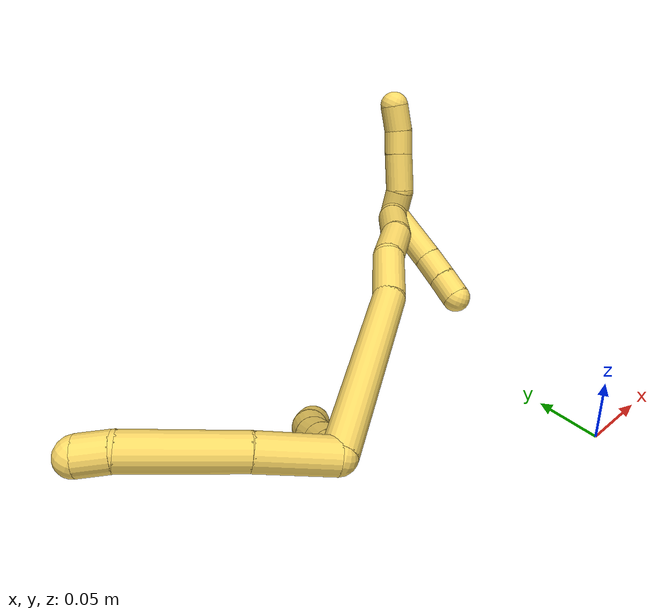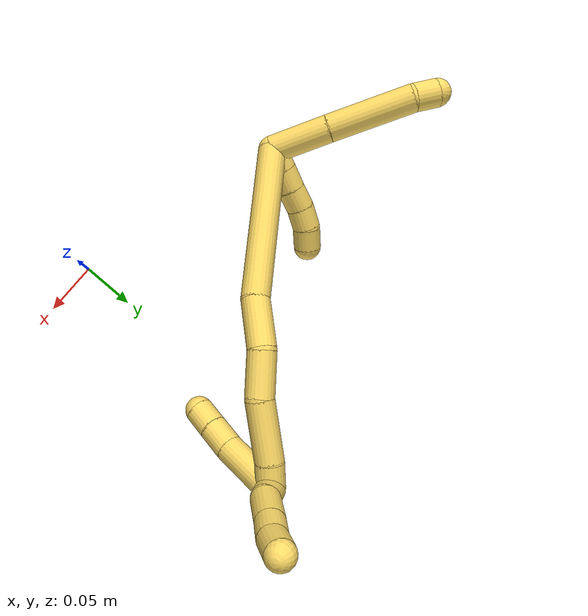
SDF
<sdf version="1.7">
 <world name="default">
  <model name="5">
   <static>0</static>
   <link name="5">
    <collision name="collision-cylinder-e_1_2_8">
     <pose>-0.020181 0.016106 -0.005614 -1.90618 -0.869127 1.15742</pose>
     <geometry><cylinder><radius>0.0125</radius><length>0.052847</length></cylinder></geometry>
     <surface>
      <friction><ode><mu>1.16</mu><mu2>1.16</mu2><slip1>0</slip1><slip2>0</slip2></ode></friction>
      <contact><ode><kp>1e+06</kp><kd>1</kd><max_vel>0</max_vel><min_depth>0.001</min_depth></ode></contact>
     </surface>
    </collision>
    <visual name="visual-cylinder-e_1_2_8">
     <pose>-0.020181 0.016106 -0.005614 -1.90618 -0.869127 1.15742</pose>
     <geometry><cylinder><radius>0.0125</radius><length>0.052847</length></cylinder></geometry>
     <material><ambient>1 0.858824 0.4 1</ambient></material>
    </visual>
    <collision name="collision-cylinder-e_2_8_9">
     <pose>-0.06904 0.055379 -0.021342 -1.98246 -0.848299 1.2078</pose>
     <geometry><cylinder><radius>0.0125</radius><length>0.076456</length></cylinder></geometry>
     <surface>
      <friction><ode><mu>1.16</mu><mu2>1.16</mu2><slip1>0</slip1><slip2>0</slip2></ode></friction>
      <contact><ode><kp>1e+06</kp><kd>1</kd><max_vel>0</max_vel><min_depth>0.001</min_depth></ode></contact>
     </surface>
    </collision>
    <visual name="visual-cylinder-e_2_8_9">
     <pose>-0.06904 0.055379 -0.021342 -1.98246 -0.848299 1.2078</pose>
     <geometry><cylinder><radius>0.0125</radius><length>0.076456</length></cylinder></geometry>
     <material><ambient>1 0.858824 0.4 1</ambient></material>
    </visual>
    <collision name="collision-cylinder-e_3_9_6">
     <pose>-0.104113 0.085085 -0.036297 -2.20789 -0.666272 1.2033</pose>
     <geometry><cylinder><radius>0.0125</radius><length>0.020697</length></cylinder></geometry>
     <surface>
      <friction><ode><mu>1.16</mu><mu2>1.16</mu2><slip1>0</slip1><slip2>0</slip2></ode></friction>
      <contact><ode><kp>1e+06</kp><kd>1</kd><max_vel>0</max_vel><min_depth>0.001</min_depth></ode></contact>
     </surface>
    </collision>
    <visual name="visual-cylinder-e_3_9_6">
     <pose>-0.104113 0.085085 -0.036297 -2.20789 -0.666272 1.2033</pose>
     <geometry><cylinder><radius>0.0125</radius><length>0.020697</length></cylinder></geometry>
     <material><ambient>1 0.858824 0.4 1</ambient></material>
    </visual>
    <collision name="collision-cylinder-e_1_2_10">
     <pose>0.005709 0.007364 -0.003629 -2.02867 0.607634 -0.933736</pose>
     <geometry><cylinder><radius>0.0125</radius><length>0.02</length></cylinder></geometry>
     <surface>
      <friction><ode><mu>1.16</mu><mu2>1.16</mu2><slip1>0</slip1><slip2>0</slip2></ode></friction>
      <contact><ode><kp>1e+06</kp><kd>1</kd><max_vel>0</max_vel><min_depth>0.001</min_depth></ode></contact>
     </surface>
    </collision>
    <visual name="visual-cylinder-e_1_2_10">
     <pose>0.005709 0.007364 -0.003629 -2.02867 0.607634 -0.933736</pose>
     <geometry><cylinder><radius>0.0125</radius><length>0.02</length></cylinder></geometry>
     <material><ambient>1 0.858824 0.4 1</ambient></material>
    </visual>
    <collision name="collision-cylinder-e_2_10_11">
     <pose>0.017433 0.021955 -0.010666 -2.01146 0.645268 -0.97047</pose>
     <geometry><cylinder><radius>0.0125</radius><length>0.02</length></cylinder></geometry>
     <surface>
      <friction><ode><mu>1.16</mu><mu2>1.16</mu2><slip1>0</slip1><slip2>0</slip2></ode></friction>
      <contact><ode><kp>1e+06</kp><kd>1</kd><max_vel>0</max_vel><min_depth>0.001</min_depth></ode></contact>
     </surface>
    </collision>
    <visual name="visual-cylinder-e_2_10_11">
     <pose>0.017433 0.021955 -0.010666 -2.01146 0.645268 -0.97047</pose>
     <geometry><cylinder><radius>0.0125</radius><length>0.02</length></cylinder></geometry>
     <material><ambient>1 0.858824 0.4 1</ambient></material>
    </visual>
    <collision name="collision-cylinder-e_3_11_12">
     <pose>0.029154 0.036438 -0.017917 -2.05787 0.607339 -0.959926</pose>
     <geometry><cylinder><radius>0.0125</radius><length>0.02</length></cylinder></geometry>
     <surface>
      <friction><ode><mu>1.16</mu><mu2>1.16</mu2><slip1>0</slip1><slip2>0</slip2></ode></friction>
      <contact><ode><kp>1e+06</kp><kd>1</kd><max_vel>0</max_vel><min_depth>0.001</min_depth></ode></contact>
     </surface>
    </collision>
    <visual name="visual-cylinder-e_3_11_12">
     <pose>0.029154 0.036438 -0.017917 -2.05787 0.607339 -0.959926</pose>
     <geometry><cylinder><radius>0.0125</radius><length>0.02</length></cylinder></geometry>
     <material><ambient>1 0.858824 0.4 1</ambient></material>
    </visual>
    <collision name="collision-cylinder-e_4_12_13">
     <pose>0.041726 0.050425 -0.024509 -1.9585 0.756805 -1.06872</pose>
     <geometry><cylinder><radius>0.0125</radius><length>0.02</length></cylinder></geometry>
     <surface>
      <friction><ode><mu>1.16</mu><mu2>1.16</mu2><slip1>0</slip1><slip2>0</slip2></ode></friction>
      <contact><ode><kp>1e+06</kp><kd>1</kd><max_vel>0</max_vel><min_depth>0.001</min_depth></ode></contact>
     </surface>
    </collision>
    <visual name="visual-cylinder-e_4_12_13">
     <pose>0.041726 0.050425 -0.024509 -1.9585 0.756805 -1.06872</pose>
     <geometry><cylinder><radius>0.0125</radius><length>0.02</length></cylinder></geometry>
     <material><ambient>1 0.858824 0.4 1</ambient></material>
    </visual>
    <collision name="collision-cylinder-e_5_13_5">
     <pose>0.056957 0.061775 -0.030208 -2.13922 0.99078 -1.55699</pose>
     <geometry><cylinder><radius>0.0125</radius><length>0.02</length></cylinder></geometry>
     <surface>
      <friction><ode><mu>1.16</mu><mu2>1.16</mu2><slip1>0</slip1><slip2>0</slip2></ode></friction>
      <contact><ode><kp>1e+06</kp><kd>1</kd><max_vel>0</max_vel><min_depth>0.001</min_depth></ode></contact>
     </surface>
    </collision>
    <visual name="visual-cylinder-e_5_13_5">
     <pose>0.056957 0.061775 -0.030208 -2.13922 0.99078 -1.55699</pose>
     <geometry><cylinder><radius>0.0125</radius><length>0.02</length></cylinder></geometry>
     <material><ambient>1 0.858824 0.4 1</ambient></material>
    </visual>
    <collision name="collision-cylinder-e_1_2_14">
     <pose>0.049655 0.035681 0.034345 -0.804474 0.786715 -0.349495</pose>
     <geometry><cylinder><radius>0.0125</radius><length>0.140262</length></cylinder></geometry>
     <surface>
      <friction><ode><mu>1.16</mu><mu2>1.16</mu2><slip1>0</slip1><slip2>0</slip2></ode></friction>
      <contact><ode><kp>1e+06</kp><kd>1</kd><max_vel>0</max_vel><min_depth>0.001</min_depth></ode></contact>
     </surface>
    </collision>
    <visual name="visual-cylinder-e_1_2_14">
     <pose>0.049655 0.035681 0.034345 -0.804474 0.786715 -0.349495</pose>
     <geometry><cylinder><radius>0.0125</radius><length>0.140262</length></cylinder></geometry>
     <material><ambient>1 0.858824 0.4 1</ambient></material>
    </visual>
    <collision name="collision-cylinder-e_2_14_15">
     <pose>0.11205 0.086595 0.078243 -1.01069 0.616384 -0.34867</pose>
     <geometry><cylinder><radius>0.0125</radius><length>0.044073</length></cylinder></geometry>
     <surface>
      <friction><ode><mu>1.16</mu><mu2>1.16</mu2><slip1>0</slip1><slip2>0</slip2></ode></friction>
      <contact><ode><kp>1e+06</kp><kd>1</kd><max_vel>0</max_vel><min_depth>0.001</min_depth></ode></contact>
     </surface>
    </collision>
    <visual name="visual-cylinder-e_2_14_15">
     <pose>0.11205 0.086595 0.078243 -1.01069 0.616384 -0.34867</pose>
     <geometry><cylinder><radius>0.0125</radius><length>0.044073</length></cylinder></geometry>
     <material><ambient>1 0.858824 0.4 1</ambient></material>
    </visual>
    <collision name="collision-cylinder-e_3_15_16">
     <pose>0.140667 0.112522 0.09317 -1.10506 0.924935 -0.596442</pose>
     <geometry><cylinder><radius>0.0125</radius><length>0.039766</length></cylinder></geometry>
     <surface>
      <friction><ode><mu>1.16</mu><mu2>1.16</mu2><slip1>0</slip1><slip2>0</slip2></ode></friction>
      <contact><ode><kp>1e+06</kp><kd>1</kd><max_vel>0</max_vel><min_depth>0.001</min_depth></ode></contact>
     </surface>
    </collision>
    <visual name="visual-cylinder-e_3_15_16">
     <pose>0.140667 0.112522 0.09317 -1.10506 0.924935 -0.596442</pose>
     <geometry><cylinder><radius>0.0125</radius><length>0.039766</length></cylinder></geometry>
     <material><ambient>1 0.858824 0.4 1</ambient></material>
    </visual>
    <collision name="collision-cylinder-e_4_16_17">
     <pose>0.176372 0.140603 0.099621 -1.50895 0.849864 -0.80433</pose>
     <geometry><cylinder><radius>0.0125</radius><length>0.052788</length></cylinder></geometry>
     <surface>
      <friction><ode><mu>1.16</mu><mu2>1.16</mu2><slip1>0</slip1><slip2>0</slip2></ode></friction>
      <contact><ode><kp>1e+06</kp><kd>1</kd><max_vel>0</max_vel><min_depth>0.001</min_depth></ode></contact>
     </surface>
    </collision>
    <visual name="visual-cylinder-e_4_16_17">
     <pose>0.176372 0.140603 0.099621 -1.50895 0.849864 -0.80433</pose>
     <geometry><cylinder><radius>0.0125</radius><length>0.052788</length></cylinder></geometry>
     <material><ambient>1 0.858824 0.4 1</ambient></material>
    </visual>
    <collision name="collision-cylinder-e_5_17_1">
     <pose>0.205796 0.164428 0.100782 -1.55766 0.979996 -0.969127</pose>
     <geometry><cylinder><radius>0.0125</radius><length>0.023112</length></cylinder></geometry>
     <surface>
      <friction><ode><mu>1.16</mu><mu2>1.16</mu2><slip1>0</slip1><slip2>0</slip2></ode></friction>
      <contact><ode><kp>1e+06</kp><kd>1</kd><max_vel>0</max_vel><min_depth>0.001</min_depth></ode></contact>
     </surface>
    </collision>
    <visual name="visual-cylinder-e_5_17_1">
     <pose>0.205796 0.164428 0.100782 -1.55766 0.979996 -0.969127</pose>
     <geometry><cylinder><radius>0.0125</radius><length>0.023112</length></cylinder></geometry>
     <material><ambient>1 0.858824 0.4 1</ambient></material>
    </visual>
    <collision name="collision-cylinder-e_1_1_18">
     <pose>0.213547 0.171912 0.11208 -0.093137 -0.162404 0.007585</pose>
     <geometry><cylinder><radius>0.0125</radius><length>0.022825</length></cylinder></geometry>
     <surface>
      <friction><ode><mu>1.16</mu><mu2>1.16</mu2><slip1>0</slip1><slip2>0</slip2></ode></friction>
      <contact><ode><kp>1e+06</kp><kd>1</kd><max_vel>0</max_vel><min_depth>0.001</min_depth></ode></contact>
     </surface>
    </collision>
    <visual name="visual-cylinder-e_1_1_18">
     <pose>0.213547 0.171912 0.11208 -0.093137 -0.162404 0.007585</pose>
     <geometry><cylinder><radius>0.0125</radius><length>0.022825</length></cylinder></geometry>
     <material><ambient>1 0.858824 0.4 1</ambient></material>
    </visual>
    <collision name="collision-cylinder-e_2_18_19">
     <pose>0.208976 0.179955 0.138158 -0.439873 -0.164439 0.03684</pose>
     <geometry><cylinder><radius>0.0125</radius><length>0.033305</length></cylinder></geometry>
     <surface>
      <friction><ode><mu>1.16</mu><mu2>1.16</mu2><slip1>0</slip1><slip2>0</slip2></ode></friction>
      <contact><ode><kp>1e+06</kp><kd>1</kd><max_vel>0</max_vel><min_depth>0.001</min_depth></ode></contact>
     </surface>
    </collision>
    <visual name="visual-cylinder-e_2_18_19">
     <pose>0.208976 0.179955 0.138158 -0.439873 -0.164439 0.03684</pose>
     <geometry><cylinder><radius>0.0125</radius><length>0.033305</length></cylinder></geometry>
     <material><ambient>1 0.858824 0.4 1</ambient></material>
    </visual>
    <collision name="collision-cylinder-e_3_19_20">
     <pose>0.204698 0.191103 0.162521 -0.412154 -0.14857 0.031113</pose>
     <geometry><cylinder><radius>0.0125</radius><length>0.020967</length></cylinder></geometry>
     <surface>
      <friction><ode><mu>1.16</mu><mu2>1.16</mu2><slip1>0</slip1><slip2>0</slip2></ode></friction>
      <contact><ode><kp>1e+06</kp><kd>1</kd><max_vel>0</max_vel><min_depth>0.001</min_depth></ode></contact>
     </surface>
    </collision>
    <visual name="visual-cylinder-e_3_19_20">
     <pose>0.204698 0.191103 0.162521 -0.412154 -0.14857 0.031113</pose>
     <geometry><cylinder><radius>0.0125</radius><length>0.020967</length></cylinder></geometry>
     <material><ambient>1 0.858824 0.4 1</ambient></material>
    </visual>
    <collision name="collision-cylinder-e_4_20_4">
     <pose>0.199626 0.200419 0.181618 -0.493467 -0.312467 0.079305</pose>
     <geometry><cylinder><radius>0.0125</radius><length>0.022904</length></cylinder></geometry>
     <surface>
      <friction><ode><mu>1.16</mu><mu2>1.16</mu2><slip1>0</slip1><slip2>0</slip2></ode></friction>
      <contact><ode><kp>1e+06</kp><kd>1</kd><max_vel>0</max_vel><min_depth>0.001</min_depth></ode></contact>
     </surface>
    </collision>
    <visual name="visual-cylinder-e_4_20_4">
     <pose>0.199626 0.200419 0.181618 -0.493467 -0.312467 0.079305</pose>
     <geometry><cylinder><radius>0.0125</radius><length>0.022904</length></cylinder></geometry>
     <material><ambient>1 0.858824 0.4 1</ambient></material>
    </visual>
    <collision name="collision-cylinder-e_1_1_21">
     <pose>0.218154 0.14618 0.090688 1.96192 0.103063 0.153814</pose>
     <geometry><cylinder><radius>0.0125</radius><length>0.053687</length></cylinder></geometry>
     <surface>
      <friction><ode><mu>1.16</mu><mu2>1.16</mu2><slip1>0</slip1><slip2>0</slip2></ode></friction>
      <contact><ode><kp>1e+06</kp><kd>1</kd><max_vel>0</max_vel><min_depth>0.001</min_depth></ode></contact>
     </surface>
    </collision>
    <visual name="visual-cylinder-e_1_1_21">
     <pose>0.218154 0.14618 0.090688 1.96192 0.103063 0.153814</pose>
     <geometry><cylinder><radius>0.0125</radius><length>0.053687</length></cylinder></geometry>
     <material><ambient>1 0.858824 0.4 1</ambient></material>
    </visual>
    <collision name="collision-cylinder-e_2_21_22">
     <pose>0.220352 0.110086 0.076226 1.92987 -0.046256 -0.066757</pose>
     <geometry><cylinder><radius>0.0125</radius><length>0.024399</length></cylinder></geometry>
     <surface>
      <friction><ode><mu>1.16</mu><mu2>1.16</mu2><slip1>0</slip1><slip2>0</slip2></ode></friction>
      <contact><ode><kp>1e+06</kp><kd>1</kd><max_vel>0</max_vel><min_depth>0.001</min_depth></ode></contact>
     </surface>
    </collision>
    <visual name="visual-cylinder-e_2_21_22">
     <pose>0.220352 0.110086 0.076226 1.92987 -0.046256 -0.066757</pose>
     <geometry><cylinder><radius>0.0125</radius><length>0.024399</length></cylinder></geometry>
     <material><ambient>1 0.858824 0.4 1</ambient></material>
    </visual>
    <collision name="collision-cylinder-e_3_22_3">
     <pose>0.219417 0.088524 0.067842 1.95475 -0.033866 -0.050201</pose>
     <geometry><cylinder><radius>0.0125</radius><length>0.021914</length></cylinder></geometry>
     <surface>
      <friction><ode><mu>1.16</mu><mu2>1.16</mu2><slip1>0</slip1><slip2>0</slip2></ode></friction>
      <contact><ode><kp>1e+06</kp><kd>1</kd><max_vel>0</max_vel><min_depth>0.001</min_depth></ode></contact>
     </surface>
    </collision>
    <visual name="visual-cylinder-e_3_22_3">
     <pose>0.219417 0.088524 0.067842 1.95475 -0.033866 -0.050201</pose>
     <geometry><cylinder><radius>0.0125</radius><length>0.021914</length></cylinder></geometry>
     <material><ambient>1 0.858824 0.4 1</ambient></material>
    </visual>
    <collision name="collision-sphere-3">
     <pose>0.219046 0.07837 0.06374 0 -0 0</pose>
     <geometry><sphere><radius>0.0125</radius></sphere></geometry>
     <surface>
      <friction><ode><mu>1.16</mu><mu2>1.16</mu2><slip1>0</slip1><slip2>0</slip2></ode></friction>
      <contact><ode><kp>1e+06</kp><kd>1</kd><max_vel>0</max_vel><min_depth>0.001</min_depth></ode></contact>
     </surface>
    </collision>
    <visual name="visual-sphere-3">
     <pose>0.219046 0.07837 0.06374 0 -0 0</pose>
     <geometry><sphere><radius>0.0125</radius></sphere></geometry>
     <material><ambient>1 0.858824 0.4 1</ambient></material>
    </visual>
    <collision name="collision-sphere-22">
     <pose>0.219788 0.098677 0.071944 0 -0 0</pose>
     <geometry><sphere><radius>0.0125</radius></sphere></geometry>
     <surface>
      <friction><ode><mu>1.16</mu><mu2>1.16</mu2><slip1>0</slip1><slip2>0</slip2></ode></friction>
      <contact><ode><kp>1e+06</kp><kd>1</kd><max_vel>0</max_vel><min_depth>0.001</min_depth></ode></contact>
     </surface>
    </collision>
    <visual name="visual-sphere-22">
     <pose>0.219788 0.098677 0.071944 0 -0 0</pose>
     <geometry><sphere><radius>0.0125</radius></sphere></geometry>
     <material><ambient>1 0.858824 0.4 1</ambient></material>
    </visual>
    <collision name="collision-sphere-21">
     <pose>0.220916 0.121496 0.080509 0 -0 0</pose>
     <geometry><sphere><radius>0.0125</radius></sphere></geometry>
     <surface>
      <friction><ode><mu>1.16</mu><mu2>1.16</mu2><slip1>0</slip1><slip2>0</slip2></ode></friction>
      <contact><ode><kp>1e+06</kp><kd>1</kd><max_vel>0</max_vel><min_depth>0.001</min_depth></ode></contact>
     </surface>
    </collision>
    <visual name="visual-sphere-21">
     <pose>0.220916 0.121496 0.080509 0 -0 0</pose>
     <geometry><sphere><radius>0.0125</radius></sphere></geometry>
     <material><ambient>1 0.858824 0.4 1</ambient></material>
    </visual>
    <collision name="collision-sphere-4">
     <pose>0.196106 0.20558 0.191215 0 -0 0</pose>
     <geometry><sphere><radius>0.0125</radius></sphere></geometry>
     <surface>
      <friction><ode><mu>1.16</mu><mu2>1.16</mu2><slip1>0</slip1><slip2>0</slip2></ode></friction>
      <contact><ode><kp>1e+06</kp><kd>1</kd><max_vel>0</max_vel><min_depth>0.001</min_depth></ode></contact>
     </surface>
    </collision>
    <visual name="visual-sphere-4">
     <pose>0.196106 0.20558 0.191215 0 -0 0</pose>
     <geometry><sphere><radius>0.0125</radius></sphere></geometry>
     <material><ambient>1 0.858824 0.4 1</ambient></material>
    </visual>
    <collision name="collision-sphere-20">
     <pose>0.203147 0.195257 0.172021 0 -0 0</pose>
     <geometry><sphere><radius>0.0125</radius></sphere></geometry>
     <surface>
      <friction><ode><mu>1.16</mu><mu2>1.16</mu2><slip1>0</slip1><slip2>0</slip2></ode></friction>
      <contact><ode><kp>1e+06</kp><kd>1</kd><max_vel>0</max_vel><min_depth>0.001</min_depth></ode></contact>
     </surface>
    </collision>
    <visual name="visual-sphere-20">
     <pose>0.203147 0.195257 0.172021 0 -0 0</pose>
     <geometry><sphere><radius>0.0125</radius></sphere></geometry>
     <material><ambient>1 0.858824 0.4 1</ambient></material>
    </visual>
    <collision name="collision-sphere-11">
     <pose>0.023447 0.029181 -0.014074 0 -0 0</pose>
     <geometry><sphere><radius>0.0125</radius></sphere></geometry>
     <surface>
      <friction><ode><mu>1.16</mu><mu2>1.16</mu2><slip1>0</slip1><slip2>0</slip2></ode></friction>
      <contact><ode><kp>1e+06</kp><kd>1</kd><max_vel>0</max_vel><min_depth>0.001</min_depth></ode></contact>
     </surface>
    </collision>
    <visual name="visual-sphere-11">
     <pose>0.023447 0.029181 -0.014074 0 -0 0</pose>
     <geometry><sphere><radius>0.0125</radius></sphere></geometry>
     <material><ambient>1 0.858824 0.4 1</ambient></material>
    </visual>
    <collision name="collision-sphere-10">
     <pose>0.011419 0.014729 -0.007258 0 -0 0</pose>
     <geometry><sphere><radius>0.0125</radius></sphere></geometry>
     <surface>
      <friction><ode><mu>1.16</mu><mu2>1.16</mu2><slip1>0</slip1><slip2>0</slip2></ode></friction>
      <contact><ode><kp>1e+06</kp><kd>1</kd><max_vel>0</max_vel><min_depth>0.001</min_depth></ode></contact>
     </surface>
    </collision>
    <visual name="visual-sphere-10">
     <pose>0.011419 0.014729 -0.007258 0 -0 0</pose>
     <geometry><sphere><radius>0.0125</radius></sphere></geometry>
     <material><ambient>1 0.858824 0.4 1</ambient></material>
    </visual>
    <collision name="collision-sphere-6">
     <pose>-0.110509 0.091624 -0.041136 0 -0 0</pose>
     <geometry><sphere><radius>0.0125</radius></sphere></geometry>
     <surface>
      <friction><ode><mu>1.16</mu><mu2>1.16</mu2><slip1>0</slip1><slip2>0</slip2></ode></friction>
      <contact><ode><kp>1e+06</kp><kd>1</kd><max_vel>0</max_vel><min_depth>0.001</min_depth></ode></contact>
     </surface>
    </collision>
    <visual name="visual-sphere-6">
     <pose>-0.110509 0.091624 -0.041136 0 -0 0</pose>
     <geometry><sphere><radius>0.0125</radius></sphere></geometry>
     <material><ambient>1 0.858824 0.4 1</ambient></material>
    </visual>
    <collision name="collision-sphere-9">
     <pose>-0.097717 0.078545 -0.031457 0 -0 0</pose>
     <geometry><sphere><radius>0.0125</radius></sphere></geometry>
     <surface>
      <friction><ode><mu>1.16</mu><mu2>1.16</mu2><slip1>0</slip1><slip2>0</slip2></ode></friction>
      <contact><ode><kp>1e+06</kp><kd>1</kd><max_vel>0</max_vel><min_depth>0.001</min_depth></ode></contact>
     </surface>
    </collision>
    <visual name="visual-sphere-9">
     <pose>-0.097717 0.078545 -0.031457 0 -0 0</pose>
     <geometry><sphere><radius>0.0125</radius></sphere></geometry>
     <material><ambient>1 0.858824 0.4 1</ambient></material>
    </visual>
    <collision name="collision-sphere-2">
     <geometry><sphere><radius>0.0125</radius></sphere></geometry>
     <surface>
      <friction><ode><mu>1.16</mu><mu2>1.16</mu2><slip1>0</slip1><slip2>0</slip2></ode></friction>
      <contact><ode><kp>1e+06</kp><kd>1</kd><max_vel>0</max_vel><min_depth>0.001</min_depth></ode></contact>
     </surface>
    </collision>
    <visual name="visual-sphere-2">
     <geometry><sphere><radius>0.0125</radius></sphere></geometry>
     <material><ambient>1 0.858824 0.4 1</ambient></material>
    </visual>
    <collision name="collision-sphere-19">
     <pose>0.20625 0.18695 0.153022 0 -0 0</pose>
     <geometry><sphere><radius>0.0125</radius></sphere></geometry>
     <surface>
      <friction><ode><mu>1.16</mu><mu2>1.16</mu2><slip1>0</slip1><slip2>0</slip2></ode></friction>
      <contact><ode><kp>1e+06</kp><kd>1</kd><max_vel>0</max_vel><min_depth>0.001</min_depth></ode></contact>
     </surface>
    </collision>
    <visual name="visual-sphere-19">
     <pose>0.20625 0.18695 0.153022 0 -0 0</pose>
     <geometry><sphere><radius>0.0125</radius></sphere></geometry>
     <material><ambient>1 0.858824 0.4 1</ambient></material>
    </visual>
    <collision name="collision-sphere-8">
     <pose>-0.040363 0.032212 -0.011228 0 -0 0</pose>
     <geometry><sphere><radius>0.0125</radius></sphere></geometry>
     <surface>
      <friction><ode><mu>1.16</mu><mu2>1.16</mu2><slip1>0</slip1><slip2>0</slip2></ode></friction>
      <contact><ode><kp>1e+06</kp><kd>1</kd><max_vel>0</max_vel><min_depth>0.001</min_depth></ode></contact>
     </surface>
    </collision>
    <visual name="visual-sphere-8">
     <pose>-0.040363 0.032212 -0.011228 0 -0 0</pose>
     <geometry><sphere><radius>0.0125</radius></sphere></geometry>
     <material><ambient>1 0.858824 0.4 1</ambient></material>
    </visual>
    <collision name="collision-sphere-12">
     <pose>0.03486 0.043694 -0.021761 0 -0 0</pose>
     <geometry><sphere><radius>0.0125</radius></sphere></geometry>
     <surface>
      <friction><ode><mu>1.16</mu><mu2>1.16</mu2><slip1>0</slip1><slip2>0</slip2></ode></friction>
      <contact><ode><kp>1e+06</kp><kd>1</kd><max_vel>0</max_vel><min_depth>0.001</min_depth></ode></contact>
     </surface>
    </collision>
    <visual name="visual-sphere-12">
     <pose>0.03486 0.043694 -0.021761 0 -0 0</pose>
     <geometry><sphere><radius>0.0125</radius></sphere></geometry>
     <material><ambient>1 0.858824 0.4 1</ambient></material>
    </visual>
    <collision name="collision-sphere-13">
     <pose>0.048593 0.057156 -0.027258 0 -0 0</pose>
     <geometry><sphere><radius>0.0125</radius></sphere></geometry>
     <surface>
      <friction><ode><mu>1.16</mu><mu2>1.16</mu2><slip1>0</slip1><slip2>0</slip2></ode></friction>
      <contact><ode><kp>1e+06</kp><kd>1</kd><max_vel>0</max_vel><min_depth>0.001</min_depth></ode></contact>
     </surface>
    </collision>
    <visual name="visual-sphere-13">
     <pose>0.048593 0.057156 -0.027258 0 -0 0</pose>
     <geometry><sphere><radius>0.0125</radius></sphere></geometry>
     <material><ambient>1 0.858824 0.4 1</ambient></material>
    </visual>
    <collision name="collision-sphere-5">
     <pose>0.065322 0.066393 -0.033158 0 -0 0</pose>
     <geometry><sphere><radius>0.0125</radius></sphere></geometry>
     <surface>
      <friction><ode><mu>1.16</mu><mu2>1.16</mu2><slip1>0</slip1><slip2>0</slip2></ode></friction>
      <contact><ode><kp>1e+06</kp><kd>1</kd><max_vel>0</max_vel><min_depth>0.001</min_depth></ode></contact>
     </surface>
    </collision>
    <visual name="visual-sphere-5">
     <pose>0.065322 0.066393 -0.033158 0 -0 0</pose>
     <geometry><sphere><radius>0.0125</radius></sphere></geometry>
     <material><ambient>1 0.858824 0.4 1</ambient></material>
    </visual>
    <collision name="collision-sphere-14">
     <pose>0.099311 0.071362 0.06869 0 -0 0</pose>
     <geometry><sphere><radius>0.0125</radius></sphere></geometry>
     <surface>
      <friction><ode><mu>1.16</mu><mu2>1.16</mu2><slip1>0</slip1><slip2>0</slip2></ode></friction>
      <contact><ode><kp>1e+06</kp><kd>1</kd><max_vel>0</max_vel><min_depth>0.001</min_depth></ode></contact>
     </surface>
    </collision>
    <visual name="visual-sphere-14">
     <pose>0.099311 0.071362 0.06869 0 -0 0</pose>
     <geometry><sphere><radius>0.0125</radius></sphere></geometry>
     <material><ambient>1 0.858824 0.4 1</ambient></material>
    </visual>
    <collision name="collision-sphere-15">
     <pose>0.124789 0.101829 0.087796 0 -0 0</pose>
     <geometry><sphere><radius>0.0125</radius></sphere></geometry>
     <surface>
      <friction><ode><mu>1.16</mu><mu2>1.16</mu2><slip1>0</slip1><slip2>0</slip2></ode></friction>
      <contact><ode><kp>1e+06</kp><kd>1</kd><max_vel>0</max_vel><min_depth>0.001</min_depth></ode></contact>
     </surface>
    </collision>
    <visual name="visual-sphere-15">
     <pose>0.124789 0.101829 0.087796 0 -0 0</pose>
     <geometry><sphere><radius>0.0125</radius></sphere></geometry>
     <material><ambient>1 0.858824 0.4 1</ambient></material>
    </visual>
    <collision name="collision-sphere-16">
     <pose>0.156545 0.123214 0.098544 0 -0 0</pose>
     <geometry><sphere><radius>0.0125</radius></sphere></geometry>
     <surface>
      <friction><ode><mu>1.16</mu><mu2>1.16</mu2><slip1>0</slip1><slip2>0</slip2></ode></friction>
      <contact><ode><kp>1e+06</kp><kd>1</kd><max_vel>0</max_vel><min_depth>0.001</min_depth></ode></contact>
     </surface>
    </collision>
    <visual name="visual-sphere-16">
     <pose>0.156545 0.123214 0.098544 0 -0 0</pose>
     <geometry><sphere><radius>0.0125</radius></sphere></geometry>
     <material><ambient>1 0.858824 0.4 1</ambient></material>
    </visual>
    <collision name="collision-sphere-17">
     <pose>0.196199 0.157992 0.100698 0 -0 0</pose>
     <geometry><sphere><radius>0.0125</radius></sphere></geometry>
     <surface>
      <friction><ode><mu>1.16</mu><mu2>1.16</mu2><slip1>0</slip1><slip2>0</slip2></ode></friction>
      <contact><ode><kp>1e+06</kp><kd>1</kd><max_vel>0</max_vel><min_depth>0.001</min_depth></ode></contact>
     </surface>
    </collision>
    <visual name="visual-sphere-17">
     <pose>0.196199 0.157992 0.100698 0 -0 0</pose>
     <geometry><sphere><radius>0.0125</radius></sphere></geometry>
     <material><ambient>1 0.858824 0.4 1</ambient></material>
    </visual>
    <collision name="collision-sphere-1">
     <pose>0.215393 0.170865 0.100867 0 -0 0</pose>
     <geometry><sphere><radius>0.0125</radius></sphere></geometry>
     <surface>
      <friction><ode><mu>1.16</mu><mu2>1.16</mu2><slip1>0</slip1><slip2>0</slip2></ode></friction>
      <contact><ode><kp>1e+06</kp><kd>1</kd><max_vel>0</max_vel><min_depth>0.001</min_depth></ode></contact>
     </surface>
    </collision>
    <visual name="visual-sphere-1">
     <pose>0.215393 0.170865 0.100867 0 -0 0</pose>
     <geometry><sphere><radius>0.0125</radius></sphere></geometry>
     <material><ambient>1 0.858824 0.4 1</ambient></material>
    </visual>
    <collision name="collision-sphere-18">
     <pose>0.211702 0.17296 0.123294 0 -0 0</pose>
     <geometry><sphere><radius>0.0125</radius></sphere></geometry>
     <surface>
      <friction><ode><mu>1.16</mu><mu2>1.16</mu2><slip1>0</slip1><slip2>0</slip2></ode></friction>
      <contact><ode><kp>1e+06</kp><kd>1</kd><max_vel>0</max_vel><min_depth>0.001</min_depth></ode></contact>
     </surface>
    </collision>
    <visual name="visual-sphere-18">
     <pose>0.211702 0.17296 0.123294 0 -0 0</pose>
     <geometry><sphere><radius>0.0125</radius></sphere></geometry>
     <material><ambient>1 0.858824 0.4 1</ambient></material>
    </visual>
    <inertial>
     <pose>0.091571 0.087882 0.050777 0 -0 0</pose>
     <mass>0.75</mass>
     <inertia>
      <ixx>0.000193</ixx>
      <ixy>0</ixy>
      <ixz>0</ixz>
      <iyy>0.000232</iyy>
      <iyz>0</iyz>
      <izz>-0.000311</izz>
     </inertia>
    </inertial>
   </link>
   <pose>-0.186879 0.068398 0.060873 0.161106 0.473118 0.145253</pose>
  </model>
 </world>
</sdf>
